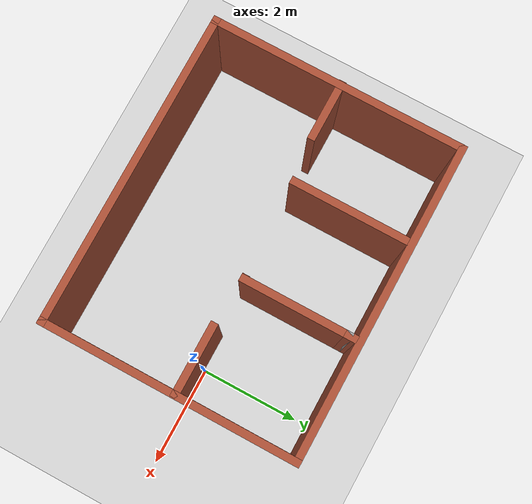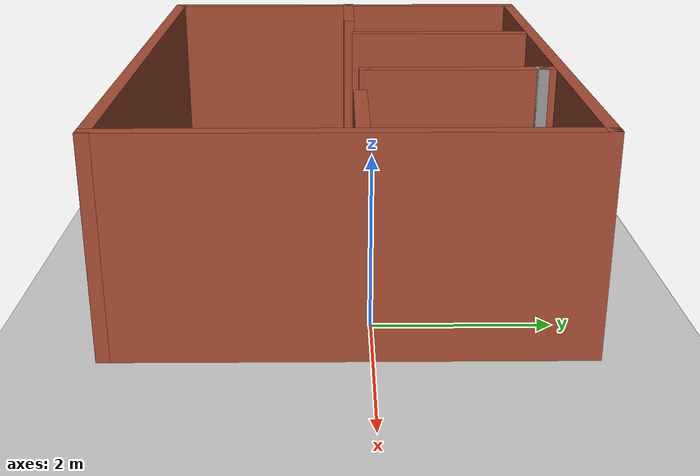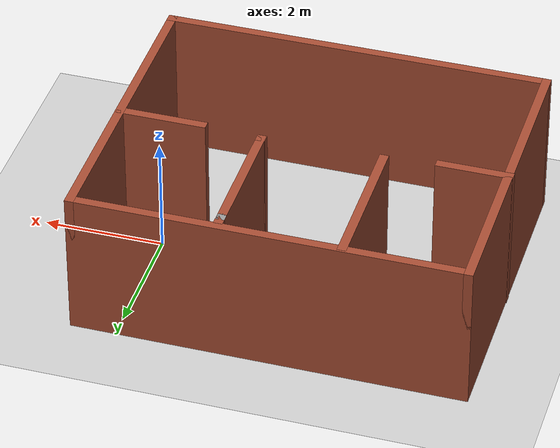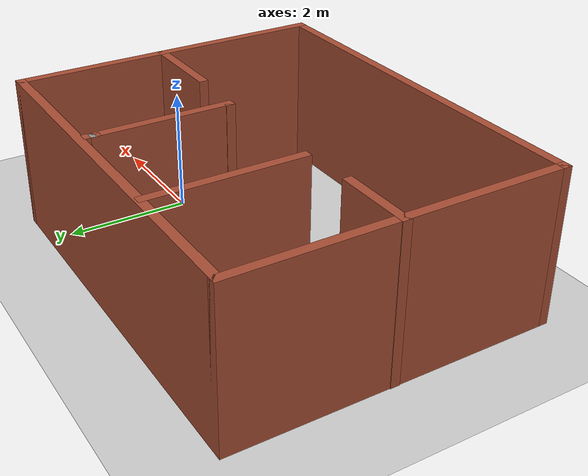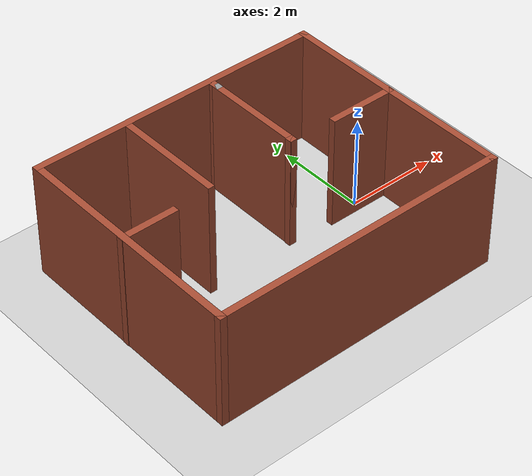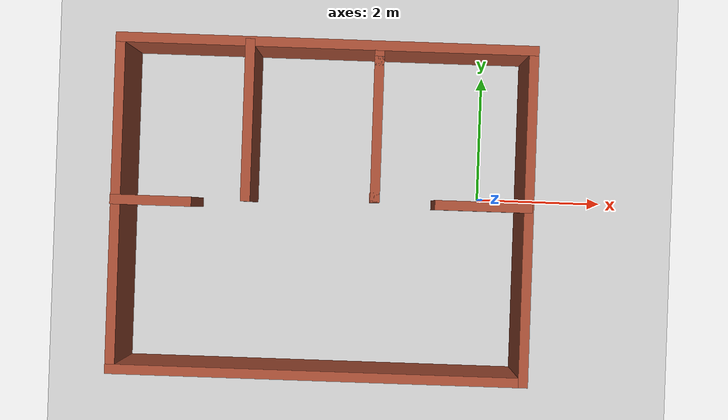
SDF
<sdf version="1.7">
 <world name="default">
  <light name="sun" type="directional">
   <pose>0 0 10 0 -0 0</pose>
   <diffuse>0.8 0.8 0.8 1</diffuse>
   <specular>0.2 0.2 0.2 1</specular>
   <attenuation>
    <range>1000</range>
    <constant>0.9</constant>
    <linear>0.01</linear>
    <quadratic>0.001</quadratic>
   </attenuation>
   <direction>-0.5 0.1 -0.9</direction>
   <spot><inner_angle>0</inner_angle><outer_angle>0</outer_angle><falloff>0</falloff></spot>
  </light>
  <model name="ground_plane">
   <static>1</static>
   <link name="link">
    <collision name="collision">
     <geometry><plane><normal>0 0 1</normal><size>100 100</size></plane></geometry>
     <surface>
      <contact><collide_bitmask>65535</collide_bitmask></contact>
      <friction><ode><mu>100</mu><mu2>50</mu2></ode></friction>
     </surface>
    </collision>
    <visual name="visual">
     <cast_shadows>0</cast_shadows>
     <geometry><plane><normal>0 0 1</normal><size>100 100</size></plane></geometry>
     <material>
      <script><uri>file://media/materials/scripts/gazebo.material</uri><name>Gazebo/Grey</name></script>
     </material>
    </visual>
   </link>
  </model>
  <gravity>0 0 -9.8</gravity>
  <magnetic_field>6e-06 2.3e-05 -4.2e-05</magnetic_field>
  <atmosphere type="adiabatic"/>
  <physics type="ode">
   <max_step_size>0.001</max_step_size>
   <real_time_factor>1</real_time_factor>
   <real_time_update_rate>1000</real_time_update_rate>
  </physics>
  <scene><ambient>0.4 0.4 0.4 1</ambient><background>0.7 0.7 0.7 1</background><shadows>1</shadows></scene>
  <spherical_coordinates>
   <surface_model>EARTH_WGS84</surface_model>
   <latitude_deg>0</latitude_deg>
   <longitude_deg>0</longitude_deg>
   <elevation>0</elevation>
   <heading_deg>0</heading_deg>
  </spherical_coordinates>
  <model name="house05">
   <pose>-2.49836 -0.244598 0 0 -0 0</pose>
   <link name="Wall_10">
    <collision name="Wall_10_Collision">
     <geometry><box><size>2.5 0.15 2.5</size></box></geometry>
     <pose>0 0 1.25 0 -0 0</pose>
    </collision>
    <visual name="Wall_10_Visual">
     <pose>0 0 1.25 0 -0 0</pose>
     <geometry><box><size>2.5 0.15 2.5</size></box></geometry>
     <material>
      <script><uri>file://media/materials/scripts/gazebo.material</uri><name>Gazebo/Bricks</name></script>
      <ambient>1 1 1 1</ambient>
     </material>
     <meta><layer>0</layer></meta>
    </visual>
    <pose>-1.18013 1.34082 0 0 -0 -1.5708</pose>
   </link>
   <link name="Wall_12">
    <collision name="Wall_12_Collision">
     <geometry><box><size>1.25 0.15 2.5</size></box></geometry>
     <pose>0 0 1.25 0 -0 0</pose>
    </collision>
    <visual name="Wall_12_Visual">
     <pose>0 0 1.25 0 -0 0</pose>
     <geometry><box><size>1.25 0.15 2.5</size></box></geometry>
     <material>
      <script><uri>file://media/materials/scripts/gazebo.material</uri><name>Gazebo/Bricks</name></script>
      <ambient>1 1 1 1</ambient>
     </material>
     <meta><layer>0</layer></meta>
    </visual>
    <pose>-2.63013 0.055821 0 0 -0 0</pose>
   </link>
   <link name="Wall_14">
    <collision name="Wall_14_Collision">
     <geometry><box><size>0.16 0.15 2.5</size></box></geometry>
     <pose>0 0 1.25 0 -0 0</pose>
    </collision>
    <visual name="Wall_14_Visual">
     <pose>0 0 1.25 0 -0 0</pose>
     <geometry><box><size>0.16 0.15 2.5</size></box></geometry>
     <material>
      <script><uri>file://media/materials/scripts/gazebo.material</uri><name>Gazebo/Bricks</name></script>
      <ambient>1 1 1 1</ambient>
     </material>
     <meta><layer>0</layer></meta>
    </visual>
    <pose>0.804867 0.21582 0 0 -0 0</pose>
   </link>
   <link name="Wall_15">
    <collision name="Wall_15_Collision">
     <geometry><box><size>2.25 0.15 2.5</size></box></geometry>
     <pose>0 0 1.25 0 -0 0</pose>
    </collision>
    <visual name="Wall_15_Visual">
     <pose>0 0 1.25 0 -0 0</pose>
     <geometry><box><size>2.25 0.15 2.5</size></box></geometry>
     <material>
      <script><uri>file://media/materials/scripts/gazebo.material</uri><name>Gazebo/Bricks</name></script>
      <ambient>1 1 1 1</ambient>
     </material>
     <meta><layer>0</layer></meta>
    </visual>
    <pose>0.809867 1.26582 0 0 -0 1.5708</pose>
   </link>
   <link name="Wall_16">
    <collision name="Wall_16_Collision">
     <geometry><box><size>0.15 0.15 2.5</size></box></geometry>
     <pose>0 0 1.25 0 -0 0</pose>
    </collision>
    <visual name="Wall_16_Visual">
     <pose>0 0 1.25 0 -0 0</pose>
     <geometry><box><size>0.15 0.15 2.5</size></box></geometry>
     <material>
      <script><uri>file://media/materials/scripts/gazebo.material</uri><name>Gazebo/Grey</name></script>
      <ambient>1 1 1 1</ambient>
     </material>
     <meta><layer>0</layer></meta>
    </visual>
    <pose>0.809867 2.31582 0 0 -0 0</pose>
   </link>
   <link name="Wall_17">
    <collision name="Wall_17_Collision">
     <geometry><box><size>0.25 0.15 2.5</size></box></geometry>
     <pose>0 0 1.25 0 -0 0</pose>
    </collision>
    <visual name="Wall_17_Visual">
     <pose>0 0 1.25 0 -0 0</pose>
     <geometry><box><size>0.25 0.15 2.5</size></box></geometry>
     <material>
      <script><uri>file://media/materials/scripts/gazebo.material</uri><name>Gazebo/Bricks</name></script>
      <ambient>1 1 1 1</ambient>
     </material>
     <meta><layer>0</layer></meta>
    </visual>
    <pose>0.809867 2.36582 0 0 -0 1.5708</pose>
   </link>
   <link name="Wall_19">
    <collision name="Wall_19_Collision">
     <geometry><box><size>1.5 0.15 2.5</size></box></geometry>
     <pose>0 0 1.25 0 -0 0</pose>
    </collision>
    <visual name="Wall_19_Visual">
     <pose>0 0 1.25 0 -0 0</pose>
     <geometry><box><size>1.5 0.15 2.5</size></box></geometry>
     <material>
      <script><uri>file://media/materials/scripts/gazebo.material</uri><name>Gazebo/Bricks</name></script>
      <ambient>1 1 1 1</ambient>
     </material>
     <meta><layer>0</layer></meta>
    </visual>
    <pose>2.48487 0.13582 0 0 -0 3.14159</pose>
   </link>
   <link name="Wall_5">
    <collision name="Wall_5_Collision">
     <geometry><box><size>6.5 0.15 2.5</size></box></geometry>
     <pose>0 0 1.25 0 -0 0</pose>
    </collision>
    <visual name="Wall_5_Visual">
     <pose>0 0 1.25 0 -0 0</pose>
     <geometry><box><size>6.5 0.15 2.5</size></box></geometry>
     <material>
      <script><uri>file://media/materials/scripts/gazebo.material</uri><name>Gazebo/Bricks</name></script>
      <ambient>1 1 1 1</ambient>
     </material>
     <meta><layer>0</layer></meta>
    </visual>
    <pose>0.005133 2.55 0 0 -0 0</pose>
   </link>
   <link name="Wall_6">
    <collision name="Wall_6_Collision">
     <geometry><box><size>5.25 0.15 2.5</size></box></geometry>
     <pose>0 0 1.25 0 -0 0</pose>
    </collision>
    <visual name="Wall_6_Visual">
     <pose>0 0 1.25 0 -0 0</pose>
     <geometry><box><size>5.25 0.15 2.5</size></box></geometry>
     <material>
      <script><uri>file://media/materials/scripts/gazebo.material</uri><name>Gazebo/Bricks</name></script>
      <ambient>1 1 1 1</ambient>
     </material>
     <meta><layer>0</layer></meta>
    </visual>
    <pose>3.18013 0 0 0 -0 -1.5708</pose>
   </link>
   <link name="Wall_7">
    <collision name="Wall_7_Collision">
     <geometry><box><size>6.5 0.15 2.5</size></box></geometry>
     <pose>0 0 1.25 0 -0 0</pose>
    </collision>
    <visual name="Wall_7_Visual">
     <pose>0 0 1.25 0 -0 0</pose>
     <geometry><box><size>6.5 0.15 2.5</size></box></geometry>
     <material>
      <script><uri>file://media/materials/scripts/gazebo.material</uri><name>Gazebo/Bricks</name></script>
      <ambient>1 1 1 1</ambient>
     </material>
     <meta><layer>0</layer></meta>
    </visual>
    <pose>0.005133 -2.55 0 0 -0 3.14159</pose>
   </link>
   <link name="Wall_8">
    <collision name="Wall_8_Collision">
     <geometry><box><size>5.25 0.15 2.5</size></box></geometry>
     <pose>0 0 1.25 0 -0 0</pose>
    </collision>
    <visual name="Wall_8_Visual">
     <pose>0 0 1.25 0 -0 0</pose>
     <geometry><box><size>5.25 0.15 2.5</size></box></geometry>
     <material>
      <script><uri>file://media/materials/scripts/gazebo.material</uri><name>Gazebo/Bricks</name></script>
      <ambient>1 1 1 1</ambient>
     </material>
     <meta><layer>0</layer></meta>
    </visual>
    <pose>-3.16987 0 0 0 -0 1.5708</pose>
   </link>
   <static>1</static>
  </model>
 </world>
</sdf>
